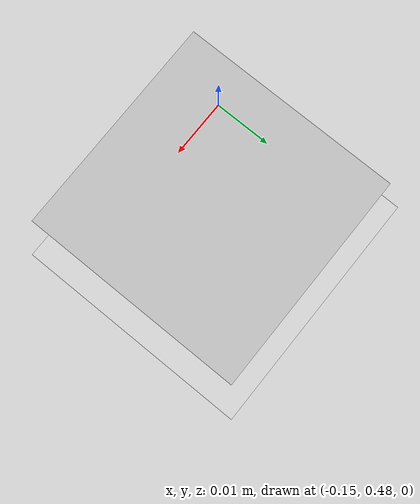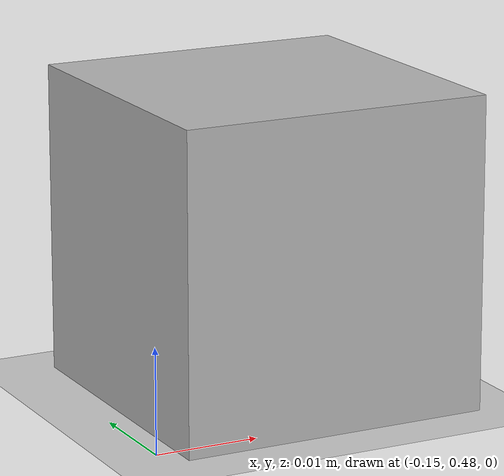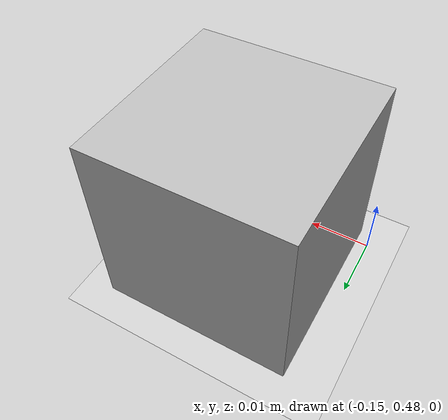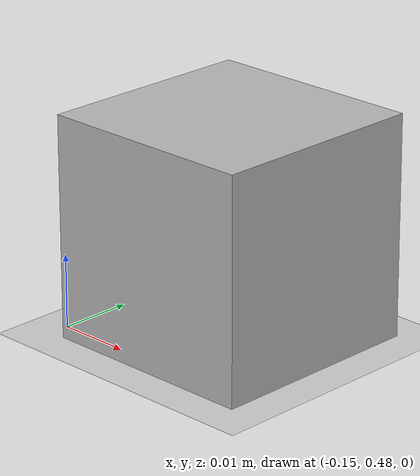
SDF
<?xml version="1.0" ?>
<sdf version="1.6">
  <world name="motus_world">
    <physics name="motus_physics" type="dartsim">
      <max_step_size>0.008</max_step_size>
      <real_time_update_rate>250</real_time_update_rate>
    </physics>
    <plugin
      filename="gz-sim-physics-system"
      name="gz::sim::systems::Physics">
    </plugin>
    <plugin
      filename="gz-sim-user-commands-system"
      name="gz::sim::systems::UserCommands">
    </plugin>
    <plugin
      filename="gz-sim-scene-broadcaster-system"
      name="gz::sim::systems::SceneBroadcaster">
    </plugin>
    <plugin
      filename="gz-sim-contact-system"
      name="gz::sim::systems::Contact">
    </plugin>
    <scene>
      <shadows>false</shadows>
    </scene>
    <light type="directional" name="sun">
      <cast_shadows>False</cast_shadows>
      <pose>0 0 10 0 0 0</pose>
      <diffuse>0.8 0.8 0.8 1</diffuse>
      <specular>0.2 0.2 0.2 1</specular>
      <attenuation>
        <range>1000</range>
        <constant>0.9</constant>
        <linear>0.01</linear>
        <quadratic>0.001</quadratic>
      </attenuation>
      <direction>-0.5 0.1 -0.9</direction>
    </light>
    <model name="ground_plane">
      <static>true</static>
      <link name="link">
        <collision name="collision">
          <geometry>
            <plane>
              <normal>0 0 1</normal>
              <size>100 100</size>
            </plane>
          </geometry>
        </collision>
        <visual name="visual">
          <geometry>
            <plane>
              <normal>0 0 1</normal>
              <size>100 100</size>
            </plane>
          </geometry>
          <material>
            <ambient>0.8 0.8 0.8 1</ambient>
            <diffuse>0.8 0.8 0.8 1</diffuse>
            <specular>0.8 0.8 0.8 1</specular>
          </material>
        </visual>
      </link>
    </model>

    <model name="grasp_test_box">
      <pose>-0.132990 0.492449 0.014999 0 0 0</pose>
      <link name="link">
        <inertial><mass>0.005</mass></inertial>
        <collision name="collision">
          <geometry><box><size>0.03 0.03 0.03</size></box></geometry>
        </collision>
        <visual name="visual">
          <geometry><box><size>0.03 0.03 0.03</size></box></geometry>
        </visual>
      </link>
    </model>

  </world>
</sdf>
